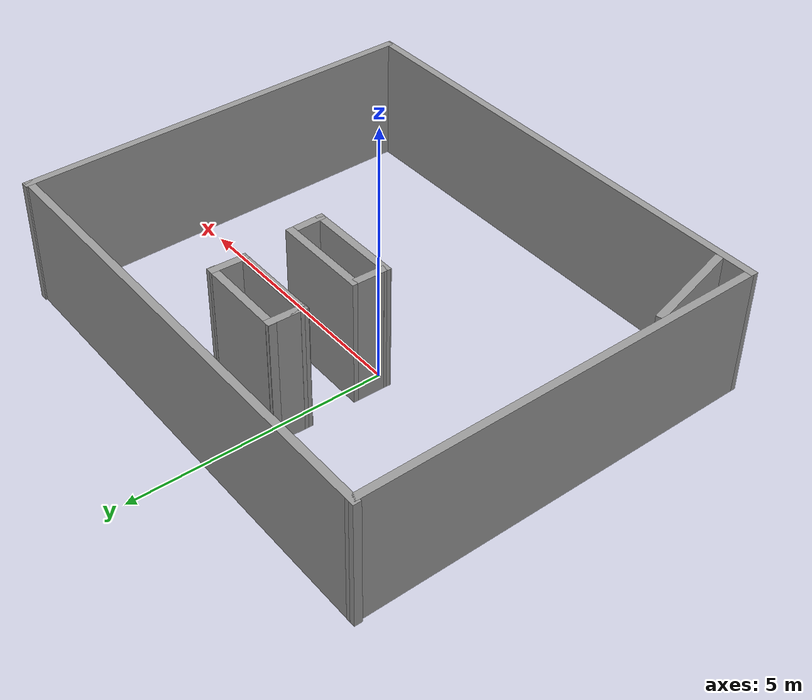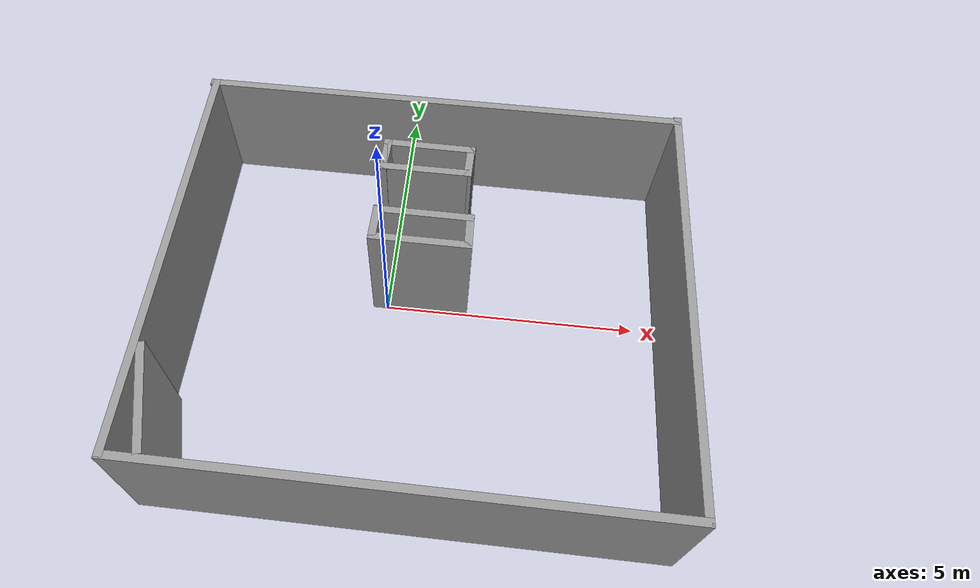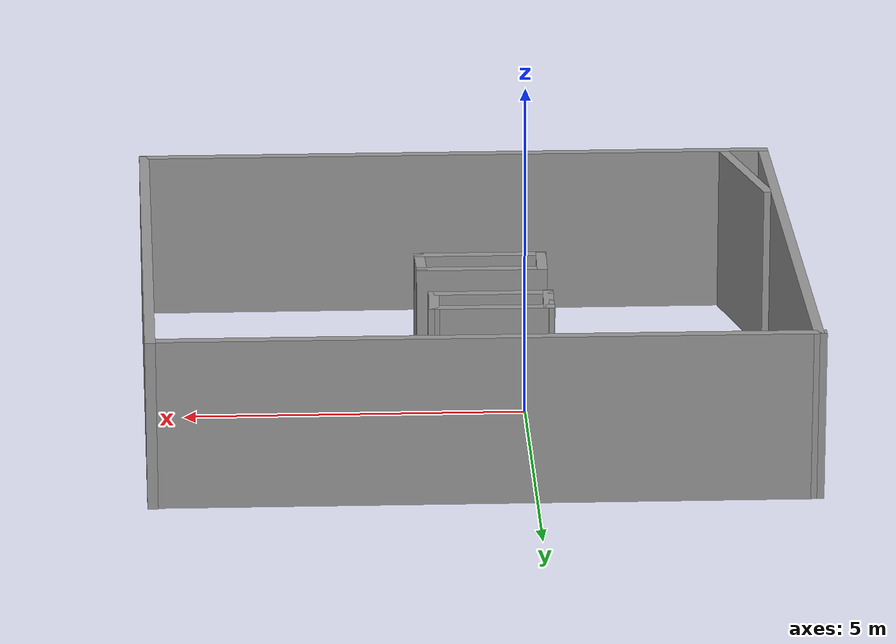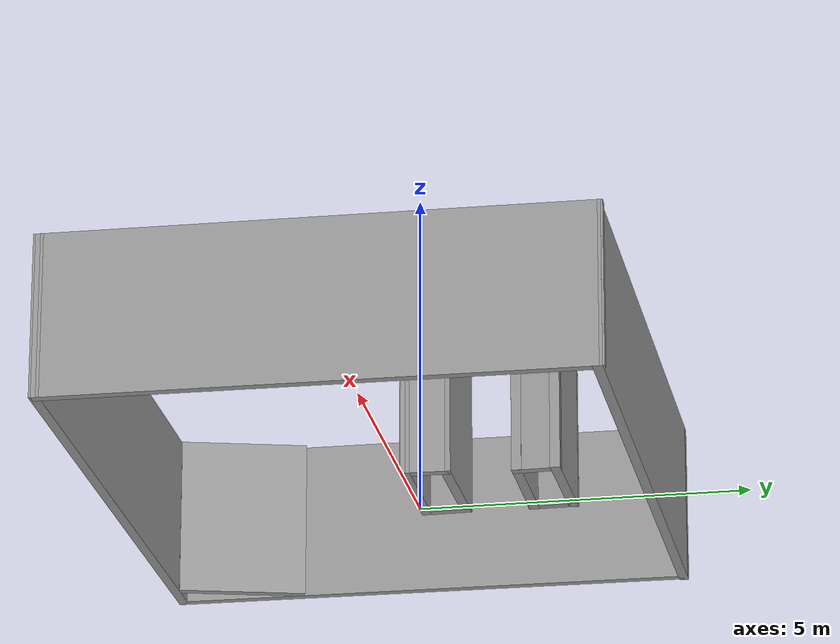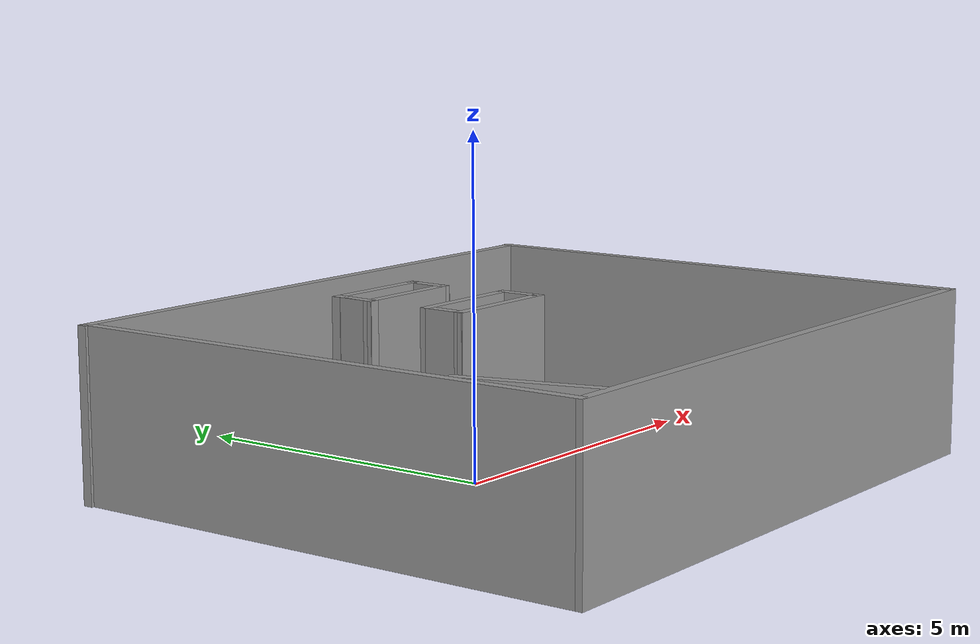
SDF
<?xml version='1.0'?>
<sdf version='1.6'>
  <model name='23.11.16_exp'>
    <pose frame=''>0.790146 -0.519677 0 0 -0 0</pose>
    <link name='Wall_0'>
      <collision name='Wall_0_Collision'>
        <geometry>
          <box>
            <size>9.59909 0.15 2.5</size>
          </box>
        </geometry>
        <pose frame=''>0 0 1.25 0 -0 0</pose>
      </collision>
      <visual name='Wall_0_Visual'>
        <pose frame=''>0 0 1.25 0 -0 0</pose>
        <geometry>
          <box>
            <size>9.59909 0.15 2.5</size>
          </box>
        </geometry>
        <material>
          <script>
            <uri>file://media/materials/scripts/gazebo.material</uri>
            <name>Gazebo/Grey</name>
          </script>
          <ambient>1 1 1 1</ambient>
        </material>
        <meta>
          <layer>0</layer>
        </meta>
      </visual>
      <pose frame=''>0.059625 -4.01887 0 0 -0 -0.000422</pose>
    </link>
    <link name='Wall_10'>
      <collision name='Wall_10_Collision'>
        <geometry>
          <box>
            <size>0.755998 0.15 2.5</size>
          </box>
        </geometry>
        <pose frame=''>0 0 1.25 0 -0 0</pose>
      </collision>
      <visual name='Wall_10_Visual'>
        <pose frame=''>0 0 1.25 0 -0 0</pose>
        <geometry>
          <box>
            <size>0.755998 0.15 2.5</size>
          </box>
        </geometry>
        <material>
          <script>
            <uri>file://media/materials/scripts/gazebo.material</uri>
            <name>Gazebo/Grey</name>
          </script>
          <ambient>1 1 1 1</ambient>
        </material>
        <meta>
          <layer>0</layer>
        </meta>
      </visual>
      <pose frame=''>-1.02121 2.51212 0 0 -0 -1.60053</pose>
    </link>
    <link name='Wall_12'>
      <collision name='Wall_12_Collision'>
        <geometry>
          <box>
            <size>1.89486 0.15 2.5</size>
          </box>
        </geometry>
        <pose frame=''>0 0 1.25 0 -0 0</pose>
      </collision>
      <visual name='Wall_12_Visual'>
        <pose frame=''>0 0 1.25 0 -0 0</pose>
        <geometry>
          <box>
            <size>1.89486 0.15 2.5</size>
          </box>
        </geometry>
        <material>
          <script>
            <uri>file://media/materials/scripts/gazebo.material</uri>
            <name>Gazebo/Grey</name>
          </script>
          <ambient>1 1 1 1</ambient>
        </material>
        <meta>
          <layer>0</layer>
        </meta>
      </visual>
      <pose frame=''>-0.129427 1.18209 0 0 -0 -0.008685</pose>
    </link>
    <link name='Wall_13'>
      <collision name='Wall_13_Collision'>
        <geometry>
          <box>
            <size>0.736934 0.15 2.5</size>
          </box>
        </geometry>
        <pose frame=''>0 0 1.25 0 -0 0</pose>
      </collision>
      <visual name='Wall_13_Visual'>
        <pose frame=''>0 0 1.25 0 -0 0</pose>
        <geometry>
          <box>
            <size>0.736934 0.15 2.5</size>
          </box>
        </geometry>
        <material>
          <script>
            <uri>file://media/materials/scripts/gazebo.material</uri>
            <name>Gazebo/Grey</name>
          </script>
          <ambient>1 1 1 1</ambient>
        </material>
        <meta>
          <layer>0</layer>
        </meta>
      </visual>
      <pose frame=''>0.750375 0.871143 0 0 -0 -1.54556</pose>
    </link>
    <link name='Wall_14'>
      <collision name='Wall_14_Collision'>
        <geometry>
          <box>
            <size>1.92324 0.15 2.5</size>
          </box>
        </geometry>
        <pose frame=''>0 0 1.25 0 -0 0</pose>
      </collision>
      <visual name='Wall_14_Visual'>
        <pose frame=''>0 0 1.25 0 -0 0</pose>
        <geometry>
          <box>
            <size>1.92324 0.15 2.5</size>
          </box>
        </geometry>
        <material>
          <script>
            <uri>file://media/materials/scripts/gazebo.material</uri>
            <name>Gazebo/Grey</name>
          </script>
          <ambient>1 1 1 1</ambient>
        </material>
        <meta>
          <layer>0</layer>
        </meta>
      </visual>
      <pose frame=''>-0.128832 0.57147 0 0 -0 3.13742</pose>
    </link>
    <link name='Wall_15'>
      <collision name='Wall_15_Collision'>
        <geometry>
          <box>
            <size>0.73945 0.15 2.5</size>
          </box>
        </geometry>
        <pose frame=''>0 0 1.25 0 -0 0</pose>
      </collision>
      <visual name='Wall_15_Visual'>
        <pose frame=''>0 0 1.25 0 -0 0</pose>
        <geometry>
          <box>
            <size>0.73945 0.15 2.5</size>
          </box>
        </geometry>
        <material>
          <script>
            <uri>file://media/materials/scripts/gazebo.material</uri>
            <name>Gazebo/Grey</name>
          </script>
          <ambient>1 1 1 1</ambient>
        </material>
        <meta>
          <layer>0</layer>
        </meta>
      </visual>
      <pose frame=''>-1.00863 0.885025 0 0 -0 1.54768</pose>
    </link>
    <link name='Wall_2'>
      <collision name='Wall_2_Collision'>
        <geometry>
          <box>
            <size>8.16035 0.15 2.5</size>
          </box>
        </geometry>
        <pose frame=''>0 0 1.25 0 -0 0</pose>
      </collision>
      <visual name='Wall_2_Visual'>
        <pose frame=''>0 0 1.25 0 -0 0</pose>
        <geometry>
          <box>
            <size>8.16035 0.15 2.5</size>
          </box>
        </geometry>
        <material>
          <script>
            <uri>file://media/materials/scripts/gazebo.material</uri>
            <name>Gazebo/Grey</name>
          </script>
          <ambient>1 1 1 1</ambient>
        </material>
        <meta>
          <layer>0</layer>
        </meta>
      </visual>
      <pose frame=''>-4.7048 0.014699 0 0 -0 1.58076</pose>
    </link>
    <link name='Wall_21'>
      <collision name='Wall_21_Collision'>
        <geometry>
          <box>
            <size>2 0.15 2.5</size>
          </box>
        </geometry>
        <pose frame=''>0 0 1.25 0 -0 0</pose>
      </collision>
      <visual name='Wall_21_Visual'>
        <pose frame=''>0 0 1.25 0 -0 0</pose>
        <geometry>
          <box>
            <size>2 0.15 2.5</size>
          </box>
        </geometry>
        <material>
          <script>
            <uri>file://media/materials/scripts/gazebo.material</uri>
            <name>Gazebo/Grey</name>
          </script>
          <ambient>1 1 1 1</ambient>
        </material>
        <meta>
          <layer>0</layer>
        </meta>
      </visual>
      <pose frame=''>-4.31949 -2.98422 0 0 -0 -1.309</pose>
    </link>
    <link name='Wall_3'>
      <collision name='Wall_3_Collision'>
        <geometry>
          <box>
            <size>9.58755 0.15 2.5</size>
          </box>
        </geometry>
        <pose frame=''>0 0 1.25 0 -0 0</pose>
      </collision>
      <visual name='Wall_3_Visual'>
        <pose frame=''>0 0 1.25 0 -0 0</pose>
        <geometry>
          <box>
            <size>9.58755 0.15 2.5</size>
          </box>
        </geometry>
        <material>
          <script>
            <uri>file://media/materials/scripts/gazebo.material</uri>
            <name>Gazebo/Grey</name>
          </script>
          <ambient>1 1 1 1</ambient>
        </material>
        <meta>
          <layer>0</layer>
        </meta>
      </visual>
      <pose frame=''>-0.066381 4.00438 0 0 -0 -0.003241</pose>
    </link>
    <link name='Wall_4'>
      <collision name='Wall_4_Collision'>
        <geometry>
          <box>
            <size>8.16104 0.15 2.5</size>
          </box>
        </geometry>
        <pose frame=''>0 0 1.25 0 -0 0</pose>
      </collision>
      <visual name='Wall_4_Visual'>
        <pose frame=''>0 0 1.25 0 -0 0</pose>
        <geometry>
          <box>
            <size>8.16104 0.15 2.5</size>
          </box>
        </geometry>
        <material>
          <script>
            <uri>file://media/materials/scripts/gazebo.material</uri>
            <name>Gazebo/Grey</name>
          </script>
          <ambient>1 1 1 1</ambient>
        </material>
        <meta>
          <layer>0</layer>
        </meta>
      </visual>
      <pose frame=''>4.71827 0.014699 0 0 -0 -1.55435</pose>
    </link>
    <link name='Wall_6'>
      <collision name='Wall_6_Collision'>
        <geometry>
          <box>
            <size>1.80561 0.15 2.5</size>
          </box>
        </geometry>
        <pose frame=''>0 0 1.25 0 -0 0</pose>
      </collision>
      <visual name='Wall_6_Visual'>
        <pose frame=''>0 0 1.25 0 -0 0</pose>
        <geometry>
          <box>
            <size>1.80561 0.15 2.5</size>
          </box>
        </geometry>
        <material>
          <script>
            <uri>file://media/materials/scripts/gazebo.material</uri>
            <name>Gazebo/Grey</name>
          </script>
          <ambient>1 1 1 1</ambient>
        </material>
        <meta>
          <layer>0</layer>
        </meta>
      </visual>
      <pose frame=''>-0.19445 2.80519 0 0 -0 -0.011828</pose>
    </link>
    <link name='Wall_7'>
      <collision name='Wall_7_Collision'>
        <geometry>
          <box>
            <size>0.730801 0.15 2.5</size>
          </box>
        </geometry>
        <pose frame=''>0 0 1.25 0 -0 0</pose>
      </collision>
      <visual name='Wall_7_Visual'>
        <pose frame=''>0 0 1.25 0 -0 0</pose>
        <geometry>
          <box>
            <size>0.730801 0.15 2.5</size>
          </box>
        </geometry>
        <material>
          <script>
            <uri>file://media/materials/scripts/gazebo.material</uri>
            <name>Gazebo/Grey</name>
          </script>
          <ambient>1 1 1 1</ambient>
        </material>
        <meta>
          <layer>0</layer>
        </meta>
      </visual>
      <pose frame=''>0.614292 2.50514 0 0 -0 -1.60182</pose>
    </link>
    <link name='Wall_8'>
      <collision name='Wall_8_Collision'>
        <geometry>
          <box>
            <size>1.7955 0.15 2.5</size>
          </box>
        </geometry>
        <pose frame=''>0 0 1.25 0 -0 0</pose>
      </collision>
      <visual name='Wall_8_Visual'>
        <pose frame=''>0 0 1.25 0 -0 0</pose>
        <geometry>
          <box>
            <size>1.7955 0.15 2.5</size>
          </box>
        </geometry>
        <material>
          <script>
            <uri>file://media/materials/scripts/gazebo.material</uri>
            <name>Gazebo/Grey</name>
          </script>
          <ambient>1 1 1 1</ambient>
        </material>
        <meta>
          <layer>0</layer>
        </meta>
      </visual>
      <pose frame=''>-0.207466 2.21706 0 0 -0 3.13894</pose>
    </link>
    <link name='Wall_9'>
      <collision name='Wall_9_Collision'>
        <geometry>
          <box>
            <size>0.746002 0.15 2.5</size>
          </box>
        </geometry>
        <pose frame=''>0 0 1.25 0 -0 0</pose>
      </collision>
      <visual name='Wall_9_Visual'>
        <pose frame=''>0 0 1.25 0 -0 0</pose>
        <geometry>
          <box>
            <size>0.746002 0.15 2.5</size>
          </box>
        </geometry>
        <material>
          <script>
            <uri>file://media/materials/scripts/gazebo.material</uri>
            <name>Gazebo/Grey</name>
          </script>
          <ambient>1 1 1 1</ambient>
        </material>
        <meta>
          <layer>0</layer>
        </meta>
      </visual>
      <pose frame=''>-1.02121 2.51712 0 0 -0 1.54056</pose>
    </link>
    <static>1</static>
  </model>
</sdf>
